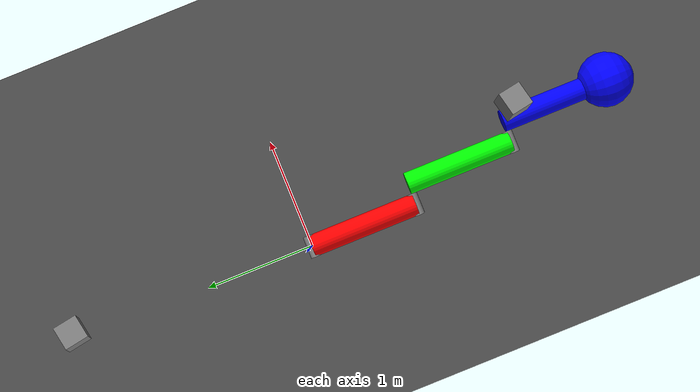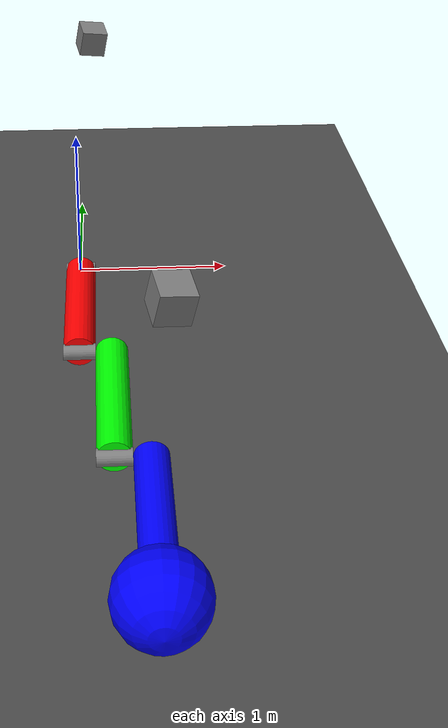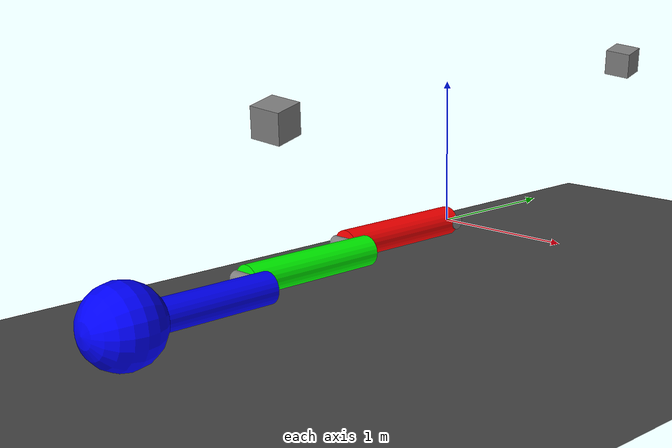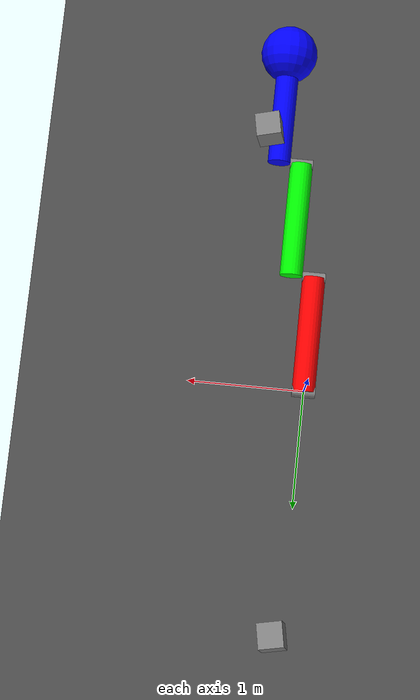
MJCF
<mujoco>
    <option gravity="0 0 -9.81" timestep="0.01" />

    <asset>
        <material name="blue" rgba="0 0 1 1" />
        <material name="green" rgba="0 1 0 1" />
        <material name="red" rgba="1 0 0 1" />
        <material name="white" rgba="1 1 1 1" />
    </asset>
    <worldbody>
        <geom type="plane" size="10 10 0.1" pos="0 0 -0.5" rgba=".3 .3 .3 1" />
        <light diffuse=".5 .5 .5" pos="0 0 3" dir="0 0 -1" />

        <body name="link_1" pos="0 0 0" euler="90 0 0">
            <site name="site_1" type="cylinder" size=".05 .1" pos=" 0 0 0" euler="0 90 0" />
            <joint name="hinge_1" type="hinge" axis="1 0 0" />
            <geom name="g_link_1" type="cylinder" size=".1 .5" pos="0 0 .5" euler="0 0 0" material="red" mass="1" />
            <site name="site_2" type="cylinder" size=".05 .1" pos=" 0 0 1" euler="0 90 0" />
            <body name="link_2" pos=".2 0 1" euler="0 0 0">
                <joint name="hinge_2" type="hinge" axis="1 0 0" />
                <geom name="g_link_2" type="cylinder" size=".1 .5" pos="0 0 .5" euler="0 0 0" material="green" mass="1" />
                <site name="site_3" type="cylinder" size=".05 .1" pos="0 0 1" euler="0 90 0" />
                <body name="link_3" pos=".2 0 1" euler="0 0 0">
                    <joint name="hinge_3" type="hinge" axis="1 0 0" />
                    <geom name="g_link_3" type="cylinder" size=".1 .5" pos="0 0 .5" euler="0 0 0" material="blue" mass="1" />
                    <geom name="end_mass" type="sphere" size=".25" pos="0 0 1" euler="0 0 0" material="blue" mass="1" />
                </body>
            </body>
        </body>

        <body name="my_floating_body" pos=".5 -2 1" euler="10 10 10">
            <joint name="box_free_j" type="free" />
            <geom type="box" size="0.1 0.1 0.1" mass="1" />
        </body>

        <body name="my_floating_body_2" pos=".1 2 1" euler="10 10 10">
            <joint name="box_free_j_2" type="free" />
            <geom type="box" size="0.1 0.1 0.1" mass="1" />
        </body>

    </worldbody>
    <actuator>
        <position name="pos_servo_1" joint="hinge_1" kp="1" />
        <position name="pos_servo_2" joint="hinge_2" kp="1" />
        <position name="pos_servo_3" joint="hinge_3" kp="1" />
    </actuator>
    <sensor>
        <jointpos name="pos_sensor_1" joint="hinge_1" />
        <jointpos name="pos_sensor_2" joint="hinge_2" />
        <jointpos name="pos_sensor_3" joint="hinge_3" />
    </sensor>
</mujoco>
